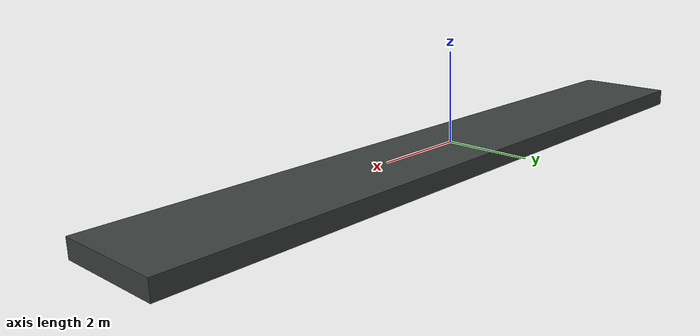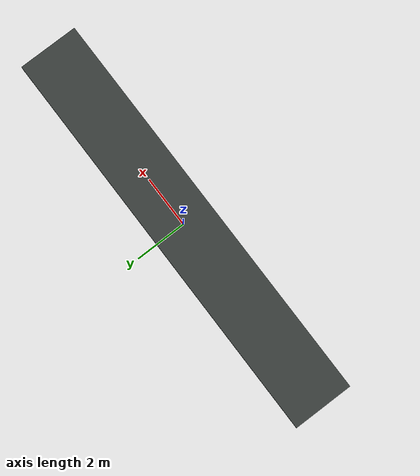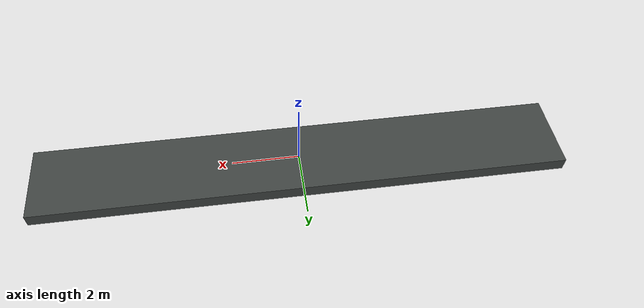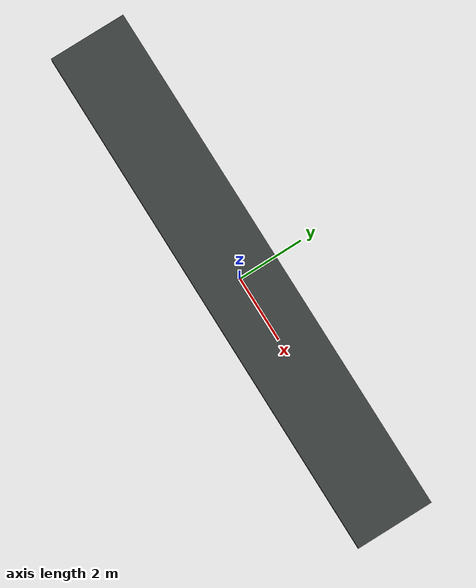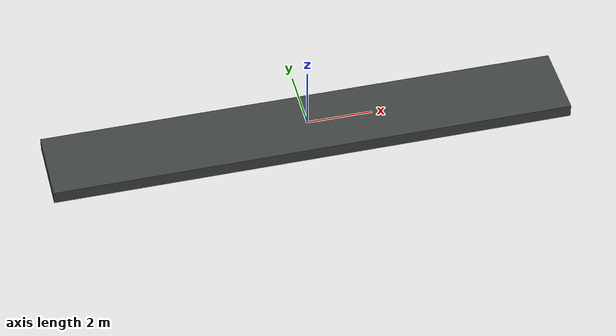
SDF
<sdf version="1.8">
 <world name="pipe_world">
  <model name="invert">
   <static>true</static>
   <link name="link">
    <collision name="lining_collision">
     <pose>0 0 -0.2 0 0 0</pose>
     <geometry><box><size>16 2.357498436 0.4</size></box></geometry>
     <surface><friction><ode><mu>1.0</mu><mu2>1.0</mu2></ode></friction></surface>
    </collision>
    <visual name="lining_visual">
     <pose>0 0 -0.2 0 0 0</pose>
     <geometry><box><size>16 2.357498436 0.4</size></box></geometry>
     <material><ambient>0.24 0.26 0.25 1</ambient><diffuse>0.24 0.26 0.25 1</diffuse></material>
    </visual>
   </link>
  </model>
 </world>
</sdf>
